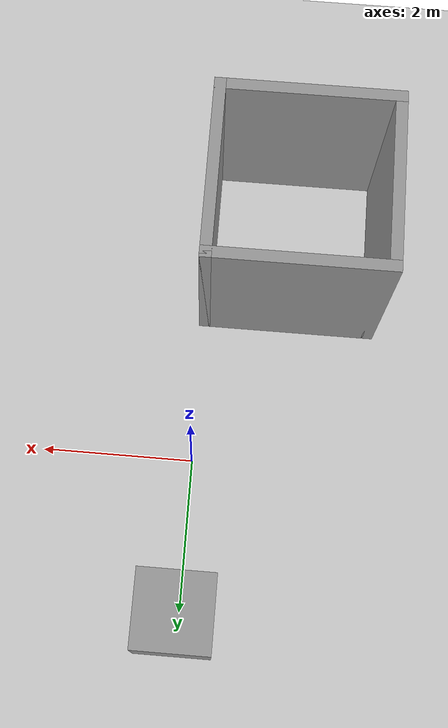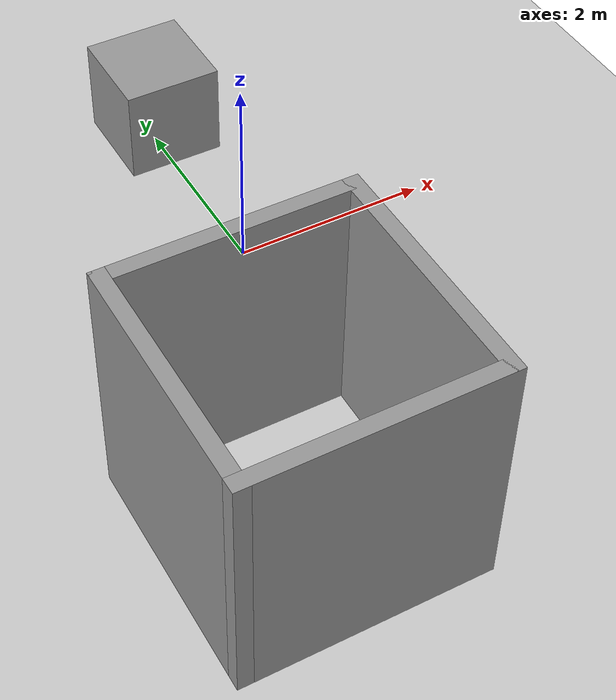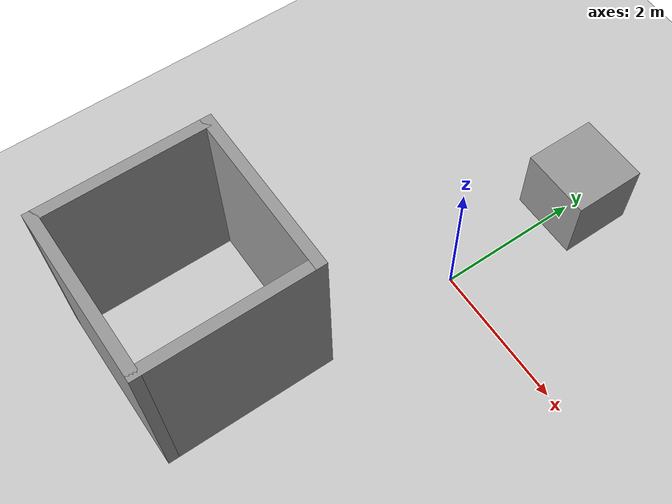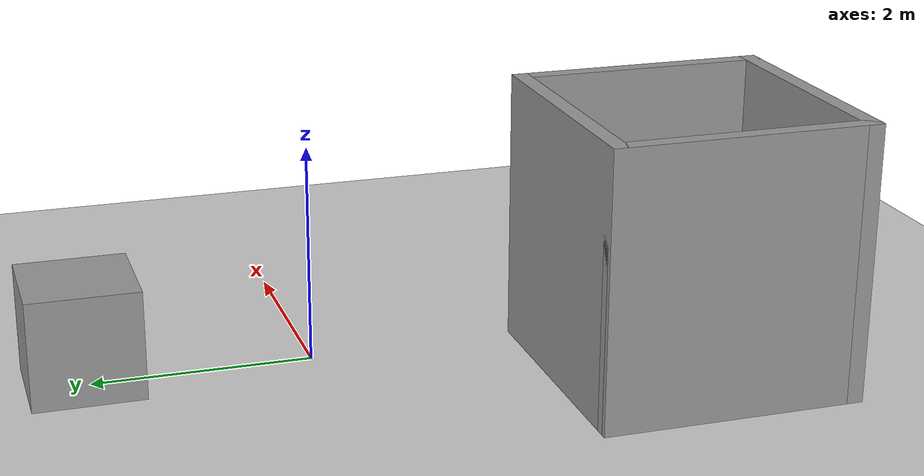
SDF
<sdf version="1.7">
 <world name="default">
  <light name="sun" type="directional">
   <pose>0 0 10 0 -0 0</pose>
   <diffuse>0.8 0.8 0.8 1</diffuse>
   <specular>0.2 0.2 0.2 1</specular>
   <attenuation>
    <range>1000</range>
    <constant>0.9</constant>
    <linear>0.01</linear>
    <quadratic>0.001</quadratic>
   </attenuation>
   <direction>-0.5 0.1 -0.9</direction>
   <spot><inner_angle>0</inner_angle><outer_angle>0</outer_angle><falloff>0</falloff></spot>
  </light>
  <model name="ground_plane">
   <static>1</static>
   <link name="link">
    <collision name="collision">
     <geometry><plane><normal>0 0 1</normal><size>100 100</size></plane></geometry>
     <surface>
      <contact><collide_bitmask>65535</collide_bitmask></contact>
      <friction><ode><mu>100</mu><mu2>50</mu2></ode></friction>
     </surface>
    </collision>
    <visual name="visual">
     <cast_shadows>0</cast_shadows>
     <geometry><plane><normal>0 0 1</normal><size>100 100</size></plane></geometry>
     <material>
      <script><uri>file://media/materials/scripts/gazebo.material</uri><name>Gazebo/Grey</name></script>
     </material>
    </visual>
   </link>
  </model>
  <gravity>0 0 -9.8</gravity>
  <magnetic_field>6e-06 2.3e-05 -4.2e-05</magnetic_field>
  <atmosphere type="adiabatic"/>
  <physics type="ode">
   <max_step_size>0.001</max_step_size>
   <real_time_factor>1</real_time_factor>
   <real_time_update_rate>1000</real_time_update_rate>
  </physics>
  <scene><ambient>0.4 0.4 0.4 1</ambient><background>0.7 0.7 0.7 1</background><shadows>1</shadows></scene>
  <spherical_coordinates>
   <surface_model>EARTH_WGS84</surface_model>
   <latitude_deg>0</latitude_deg>
   <longitude_deg>0</longitude_deg>
   <elevation>0</elevation>
   <heading_deg>0</heading_deg>
  </spherical_coordinates>
  <model name="unit_box">
   <pose>0.043631 2.05834 0.499995 -1e-05 -0 0</pose>
   <link name="link">
    <inertial>
     <mass>1</mass>
     <inertia>
      <ixx>0.166667</ixx>
      <ixy>0</ixy>
      <ixz>0</ixz>
      <iyy>0.166667</iyy>
      <iyz>0</iyz>
      <izz>0.166667</izz>
     </inertia>
    </inertial>
    <collision name="collision"><geometry><box><size>1 1 1</size></box></geometry></collision>
    <visual name="visual">
     <geometry><box><size>1 1 1</size></box></geometry>
     <material>
      <script><name>Gazebo/Grey</name><uri>file://media/materials/scripts/gazebo.material</uri></script>
     </material>
    </visual>
   </link>
  </model>
  <model name="exp3.world">
   <pose>-1.135 -2.1625 0 0 -0 0</pose>
   <link name="Wall_0">
    <collision name="Wall_0_Collision">
     <geometry><box><size>2.4 0.15 2.5</size></box></geometry>
     <pose>0 0 1.25 0 -0 0</pose>
    </collision>
    <visual name="Wall_0_Visual">
     <pose>0 0 1.25 0 -0 0</pose>
     <geometry><box><size>2.4 0.15 2.5</size></box></geometry>
     <material>
      <script><uri>file://media/materials/scripts/gazebo.material</uri><name>Gazebo/Grey</name></script>
      <ambient>1 1 1 1</ambient>
     </material>
     <meta><layer>0</layer></meta>
    </visual>
    <pose>-0 0.1625 0 0 -0 0</pose>
   </link>
   <link name="Wall_2">
    <collision name="Wall_2_Collision">
     <geometry><box><size>2.4 0.15 2.5</size></box></geometry>
     <pose>0 0 1.25 0 -0 0</pose>
    </collision>
    <visual name="Wall_2_Visual">
     <pose>0 0 1.25 0 -0 0</pose>
     <geometry><box><size>2.4 0.15 2.5</size></box></geometry>
     <material>
      <script><uri>file://media/materials/scripts/gazebo.material</uri><name>Gazebo/Grey</name></script>
      <ambient>1 1 1 1</ambient>
     </material>
     <meta><layer>0</layer></meta>
    </visual>
    <pose>1.125 -0.9625 0 0 -0 -1.5708</pose>
   </link>
   <link name="Wall_5">
    <collision name="Wall_5_Collision">
     <geometry><box><size>2.4 0.15 2.5</size></box></geometry>
     <pose>0 0 1.25 0 -0 0</pose>
    </collision>
    <visual name="Wall_5_Visual">
     <pose>0 0 1.25 0 -0 0</pose>
     <geometry><box><size>2.4 0.15 2.5</size></box></geometry>
     <material>
      <script><uri>file://media/materials/scripts/gazebo.material</uri><name>Gazebo/Grey</name></script>
      <ambient>1 1 1 1</ambient>
     </material>
     <meta><layer>0</layer></meta>
    </visual>
    <pose>-0 -2.0875 0 0 -0 3.14159</pose>
   </link>
   <link name="Wall_8">
    <collision name="Wall_8_Collision">
     <geometry><box><size>2.4 0.15 2.5</size></box></geometry>
     <pose>0 0 1.25 0 -0 0</pose>
    </collision>
    <visual name="Wall_8_Visual">
     <pose>0 0 1.25 0 -0 0</pose>
     <geometry><box><size>2.4 0.15 2.5</size></box></geometry>
     <material>
      <script><uri>file://media/materials/scripts/gazebo.material</uri><name>Gazebo/Grey</name></script>
      <ambient>1 1 1 1</ambient>
     </material>
     <meta><layer>0</layer></meta>
    </visual>
    <pose>-1.125 -0.9625 0 0 -0 1.5708</pose>
   </link>
   <static>1</static>
  </model>
 </world>
</sdf>
